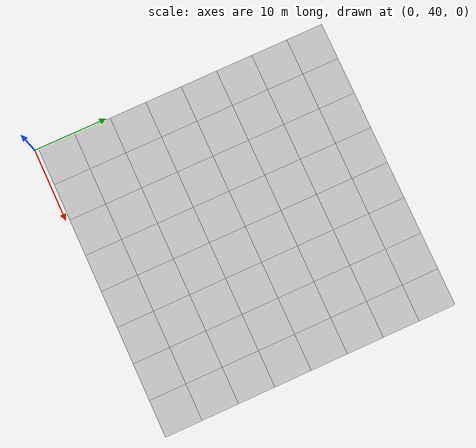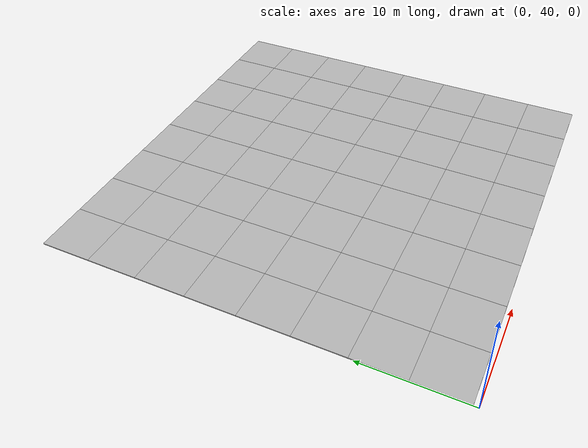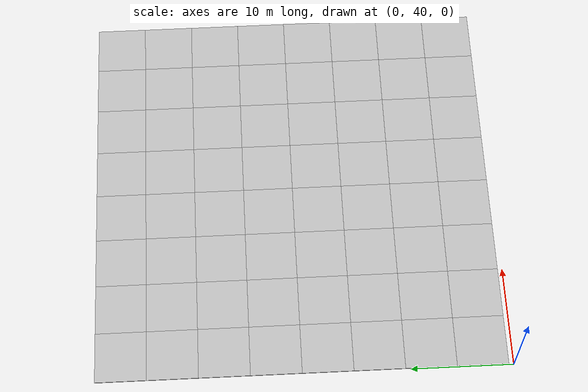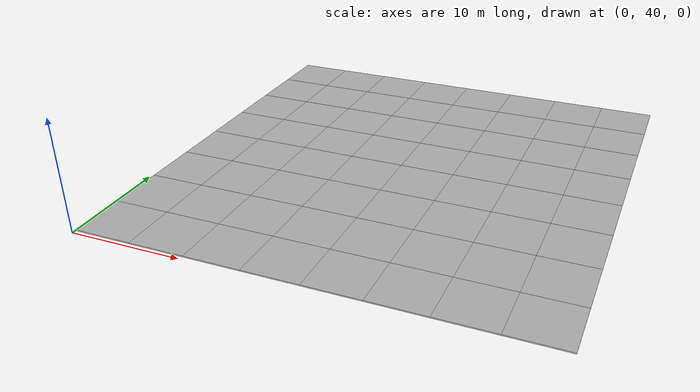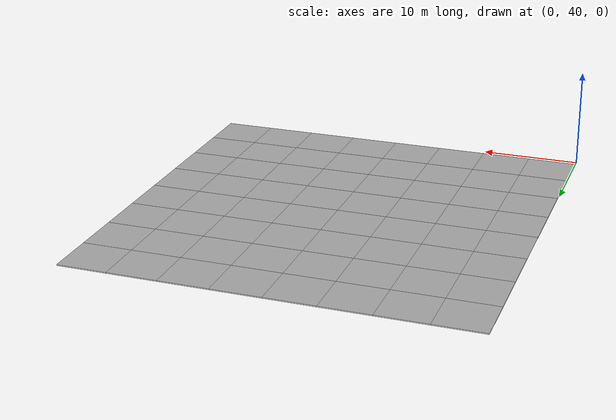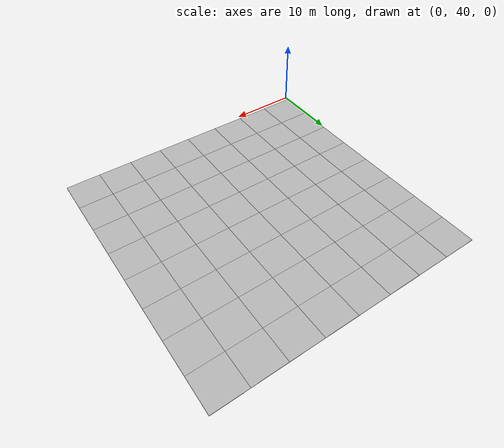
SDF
<sdf version="1.7">
 <world name="default">
  <model name="mud_plane_80x80">
   <model name="mud_plane_40x40_1">
    <model name="mud_plane_20x20">
     <model name="mud_plane">
      <static>1</static>
      <link name="link">
       <collision name="collision"><geometry><box><size>10 10 0.1</size></box></geometry></collision>
       <visual name="visual_1">
        <pose>-2.5 2.5 -0.05 0 -0 0</pose>
        <cast_shadows>0</cast_shadows>
        <geometry><box><size>5 5 0.1</size></box></geometry>
        <material>
         <script>
          <uri>model://mud_plane/materials/scripts</uri>
          <uri>model://mud_plane/materials/textures</uri>
          <name>vrc/mud</name>
         </script>
        </material>
       </visual>
       <visual name="visual_2">
        <pose>2.5 2.5 -0.05 0 -0 0</pose>
        <cast_shadows>0</cast_shadows>
        <geometry><box><size>5 5 0.1</size></box></geometry>
        <material>
         <script>
          <uri>model://mud_plane/materials/scripts</uri>
          <uri>model://mud_plane/materials/textures</uri>
          <name>vrc/mud</name>
         </script>
        </material>
       </visual>
       <visual name="visual_3">
        <pose>2.5 -2.5 -0.05 0 -0 0</pose>
        <cast_shadows>0</cast_shadows>
        <geometry><box><size>5 5 0.1</size></box></geometry>
        <material>
         <script>
          <uri>model://mud_plane/materials/scripts</uri>
          <uri>model://mud_plane/materials/textures</uri>
          <name>vrc/mud</name>
         </script>
        </material>
       </visual>
       <visual name="visual_4">
        <pose>-2.5 -2.5 -0.05 0 -0 0</pose>
        <cast_shadows>0</cast_shadows>
        <geometry><box><size>5 5 0.1</size></box></geometry>
        <material>
         <script>
          <uri>model://mud_plane/materials/scripts</uri>
          <uri>model://mud_plane/materials/textures</uri>
          <name>vrc/mud</name>
         </script>
        </material>
       </visual>
      </link>
      <pose>-4.99986 -4.99991 0 0 -0 0</pose>
     </model>
     <model name="mud_plane_0">
      <static>1</static>
      <link name="link">
       <collision name="collision"><geometry><box><size>10 10 0.1</size></box></geometry></collision>
       <visual name="visual_1">
        <pose>-2.5 2.5 -0.05 0 -0 0</pose>
        <cast_shadows>0</cast_shadows>
        <geometry><box><size>5 5 0.1</size></box></geometry>
        <material>
         <script>
          <uri>model://mud_plane/materials/scripts</uri>
          <uri>model://mud_plane/materials/textures</uri>
          <name>vrc/mud</name>
         </script>
        </material>
       </visual>
       <visual name="visual_2">
        <pose>2.5 2.5 -0.05 0 -0 0</pose>
        <cast_shadows>0</cast_shadows>
        <geometry><box><size>5 5 0.1</size></box></geometry>
        <material>
         <script>
          <uri>model://mud_plane/materials/scripts</uri>
          <uri>model://mud_plane/materials/textures</uri>
          <name>vrc/mud</name>
         </script>
        </material>
       </visual>
       <visual name="visual_3">
        <pose>2.5 -2.5 -0.05 0 -0 0</pose>
        <cast_shadows>0</cast_shadows>
        <geometry><box><size>5 5 0.1</size></box></geometry>
        <material>
         <script>
          <uri>model://mud_plane/materials/scripts</uri>
          <uri>model://mud_plane/materials/textures</uri>
          <name>vrc/mud</name>
         </script>
        </material>
       </visual>
       <visual name="visual_4">
        <pose>-2.5 -2.5 -0.05 0 -0 0</pose>
        <cast_shadows>0</cast_shadows>
        <geometry><box><size>5 5 0.1</size></box></geometry>
        <material>
         <script>
          <uri>model://mud_plane/materials/scripts</uri>
          <uri>model://mud_plane/materials/textures</uri>
          <name>vrc/mud</name>
         </script>
        </material>
       </visual>
      </link>
      <pose>-4.99946 4.99954 0 0 -0 0</pose>
     </model>
     <model name="mud_plane_1">
      <static>1</static>
      <link name="link">
       <collision name="collision"><geometry><box><size>10 10 0.1</size></box></geometry></collision>
       <visual name="visual_1">
        <pose>-2.5 2.5 -0.05 0 -0 0</pose>
        <cast_shadows>0</cast_shadows>
        <geometry><box><size>5 5 0.1</size></box></geometry>
        <material>
         <script>
          <uri>model://mud_plane/materials/scripts</uri>
          <uri>model://mud_plane/materials/textures</uri>
          <name>vrc/mud</name>
         </script>
        </material>
       </visual>
       <visual name="visual_2">
        <pose>2.5 2.5 -0.05 0 -0 0</pose>
        <cast_shadows>0</cast_shadows>
        <geometry><box><size>5 5 0.1</size></box></geometry>
        <material>
         <script>
          <uri>model://mud_plane/materials/scripts</uri>
          <uri>model://mud_plane/materials/textures</uri>
          <name>vrc/mud</name>
         </script>
        </material>
       </visual>
       <visual name="visual_3">
        <pose>2.5 -2.5 -0.05 0 -0 0</pose>
        <cast_shadows>0</cast_shadows>
        <geometry><box><size>5 5 0.1</size></box></geometry>
        <material>
         <script>
          <uri>model://mud_plane/materials/scripts</uri>
          <uri>model://mud_plane/materials/textures</uri>
          <name>vrc/mud</name>
         </script>
        </material>
       </visual>
       <visual name="visual_4">
        <pose>-2.5 -2.5 -0.05 0 -0 0</pose>
        <cast_shadows>0</cast_shadows>
        <geometry><box><size>5 5 0.1</size></box></geometry>
        <material>
         <script>
          <uri>model://mud_plane/materials/scripts</uri>
          <uri>model://mud_plane/materials/textures</uri>
          <name>vrc/mud</name>
         </script>
        </material>
       </visual>
      </link>
      <pose>4.99964 -4.99949 0 0 -0 0</pose>
     </model>
     <model name="mud_plane_2">
      <static>1</static>
      <link name="link">
       <collision name="collision"><geometry><box><size>10 10 0.1</size></box></geometry></collision>
       <visual name="visual_1">
        <pose>-2.5 2.5 -0.05 0 -0 0</pose>
        <cast_shadows>0</cast_shadows>
        <geometry><box><size>5 5 0.1</size></box></geometry>
        <material>
         <script>
          <uri>model://mud_plane/materials/scripts</uri>
          <uri>model://mud_plane/materials/textures</uri>
          <name>vrc/mud</name>
         </script>
        </material>
       </visual>
       <visual name="visual_2">
        <pose>2.5 2.5 -0.05 0 -0 0</pose>
        <cast_shadows>0</cast_shadows>
        <geometry><box><size>5 5 0.1</size></box></geometry>
        <material>
         <script>
          <uri>model://mud_plane/materials/scripts</uri>
          <uri>model://mud_plane/materials/textures</uri>
          <name>vrc/mud</name>
         </script>
        </material>
       </visual>
       <visual name="visual_3">
        <pose>2.5 -2.5 -0.05 0 -0 0</pose>
        <cast_shadows>0</cast_shadows>
        <geometry><box><size>5 5 0.1</size></box></geometry>
        <material>
         <script>
          <uri>model://mud_plane/materials/scripts</uri>
          <uri>model://mud_plane/materials/textures</uri>
          <name>vrc/mud</name>
         </script>
        </material>
       </visual>
       <visual name="visual_4">
        <pose>-2.5 -2.5 -0.05 0 -0 0</pose>
        <cast_shadows>0</cast_shadows>
        <geometry><box><size>5 5 0.1</size></box></geometry>
        <material>
         <script>
          <uri>model://mud_plane/materials/scripts</uri>
          <uri>model://mud_plane/materials/textures</uri>
          <name>vrc/mud</name>
         </script>
        </material>
       </visual>
      </link>
      <pose>4.99967 4.99986 0 0 -0 0</pose>
     </model>
     <static>0</static>
     <pose>-9.99895 9.99843 0 0 -0 0</pose>
    </model>
    <model name="mud_plane_20x20_0">
     <model name="mud_plane">
      <static>1</static>
      <link name="link">
       <collision name="collision"><geometry><box><size>10 10 0.1</size></box></geometry></collision>
       <visual name="visual_1">
        <pose>-2.5 2.5 -0.05 0 -0 0</pose>
        <cast_shadows>0</cast_shadows>
        <geometry><box><size>5 5 0.1</size></box></geometry>
        <material>
         <script>
          <uri>model://mud_plane/materials/scripts</uri>
          <uri>model://mud_plane/materials/textures</uri>
          <name>vrc/mud</name>
         </script>
        </material>
       </visual>
       <visual name="visual_2">
        <pose>2.5 2.5 -0.05 0 -0 0</pose>
        <cast_shadows>0</cast_shadows>
        <geometry><box><size>5 5 0.1</size></box></geometry>
        <material>
         <script>
          <uri>model://mud_plane/materials/scripts</uri>
          <uri>model://mud_plane/materials/textures</uri>
          <name>vrc/mud</name>
         </script>
        </material>
       </visual>
       <visual name="visual_3">
        <pose>2.5 -2.5 -0.05 0 -0 0</pose>
        <cast_shadows>0</cast_shadows>
        <geometry><box><size>5 5 0.1</size></box></geometry>
        <material>
         <script>
          <uri>model://mud_plane/materials/scripts</uri>
          <uri>model://mud_plane/materials/textures</uri>
          <name>vrc/mud</name>
         </script>
        </material>
       </visual>
       <visual name="visual_4">
        <pose>-2.5 -2.5 -0.05 0 -0 0</pose>
        <cast_shadows>0</cast_shadows>
        <geometry><box><size>5 5 0.1</size></box></geometry>
        <material>
         <script>
          <uri>model://mud_plane/materials/scripts</uri>
          <uri>model://mud_plane/materials/textures</uri>
          <name>vrc/mud</name>
         </script>
        </material>
       </visual>
      </link>
      <pose>-4.99986 -4.99991 0 0 -0 0</pose>
     </model>
     <model name="mud_plane_0">
      <static>1</static>
      <link name="link">
       <collision name="collision"><geometry><box><size>10 10 0.1</size></box></geometry></collision>
       <visual name="visual_1">
        <pose>-2.5 2.5 -0.05 0 -0 0</pose>
        <cast_shadows>0</cast_shadows>
        <geometry><box><size>5 5 0.1</size></box></geometry>
        <material>
         <script>
          <uri>model://mud_plane/materials/scripts</uri>
          <uri>model://mud_plane/materials/textures</uri>
          <name>vrc/mud</name>
         </script>
        </material>
       </visual>
       <visual name="visual_2">
        <pose>2.5 2.5 -0.05 0 -0 0</pose>
        <cast_shadows>0</cast_shadows>
        <geometry><box><size>5 5 0.1</size></box></geometry>
        <material>
         <script>
          <uri>model://mud_plane/materials/scripts</uri>
          <uri>model://mud_plane/materials/textures</uri>
          <name>vrc/mud</name>
         </script>
        </material>
       </visual>
       <visual name="visual_3">
        <pose>2.5 -2.5 -0.05 0 -0 0</pose>
        <cast_shadows>0</cast_shadows>
        <geometry><box><size>5 5 0.1</size></box></geometry>
        <material>
         <script>
          <uri>model://mud_plane/materials/scripts</uri>
          <uri>model://mud_plane/materials/textures</uri>
          <name>vrc/mud</name>
         </script>
        </material>
       </visual>
       <visual name="visual_4">
        <pose>-2.5 -2.5 -0.05 0 -0 0</pose>
        <cast_shadows>0</cast_shadows>
        <geometry><box><size>5 5 0.1</size></box></geometry>
        <material>
         <script>
          <uri>model://mud_plane/materials/scripts</uri>
          <uri>model://mud_plane/materials/textures</uri>
          <name>vrc/mud</name>
         </script>
        </material>
       </visual>
      </link>
      <pose>-4.99946 4.99954 0 0 -0 0</pose>
     </model>
     <model name="mud_plane_1">
      <static>1</static>
      <link name="link">
       <collision name="collision"><geometry><box><size>10 10 0.1</size></box></geometry></collision>
       <visual name="visual_1">
        <pose>-2.5 2.5 -0.05 0 -0 0</pose>
        <cast_shadows>0</cast_shadows>
        <geometry><box><size>5 5 0.1</size></box></geometry>
        <material>
         <script>
          <uri>model://mud_plane/materials/scripts</uri>
          <uri>model://mud_plane/materials/textures</uri>
          <name>vrc/mud</name>
         </script>
        </material>
       </visual>
       <visual name="visual_2">
        <pose>2.5 2.5 -0.05 0 -0 0</pose>
        <cast_shadows>0</cast_shadows>
        <geometry><box><size>5 5 0.1</size></box></geometry>
        <material>
         <script>
          <uri>model://mud_plane/materials/scripts</uri>
          <uri>model://mud_plane/materials/textures</uri>
          <name>vrc/mud</name>
         </script>
        </material>
       </visual>
       <visual name="visual_3">
        <pose>2.5 -2.5 -0.05 0 -0 0</pose>
        <cast_shadows>0</cast_shadows>
        <geometry><box><size>5 5 0.1</size></box></geometry>
        <material>
         <script>
          <uri>model://mud_plane/materials/scripts</uri>
          <uri>model://mud_plane/materials/textures</uri>
          <name>vrc/mud</name>
         </script>
        </material>
       </visual>
       <visual name="visual_4">
        <pose>-2.5 -2.5 -0.05 0 -0 0</pose>
        <cast_shadows>0</cast_shadows>
        <geometry><box><size>5 5 0.1</size></box></geometry>
        <material>
         <script>
          <uri>model://mud_plane/materials/scripts</uri>
          <uri>model://mud_plane/materials/textures</uri>
          <name>vrc/mud</name>
         </script>
        </material>
       </visual>
      </link>
      <pose>4.99964 -4.99949 0 0 -0 0</pose>
     </model>
     <model name="mud_plane_2">
      <static>1</static>
      <link name="link">
       <collision name="collision"><geometry><box><size>10 10 0.1</size></box></geometry></collision>
       <visual name="visual_1">
        <pose>-2.5 2.5 -0.05 0 -0 0</pose>
        <cast_shadows>0</cast_shadows>
        <geometry><box><size>5 5 0.1</size></box></geometry>
        <material>
         <script>
          <uri>model://mud_plane/materials/scripts</uri>
          <uri>model://mud_plane/materials/textures</uri>
          <name>vrc/mud</name>
         </script>
        </material>
       </visual>
       <visual name="visual_2">
        <pose>2.5 2.5 -0.05 0 -0 0</pose>
        <cast_shadows>0</cast_shadows>
        <geometry><box><size>5 5 0.1</size></box></geometry>
        <material>
         <script>
          <uri>model://mud_plane/materials/scripts</uri>
          <uri>model://mud_plane/materials/textures</uri>
          <name>vrc/mud</name>
         </script>
        </material>
       </visual>
       <visual name="visual_3">
        <pose>2.5 -2.5 -0.05 0 -0 0</pose>
        <cast_shadows>0</cast_shadows>
        <geometry><box><size>5 5 0.1</size></box></geometry>
        <material>
         <script>
          <uri>model://mud_plane/materials/scripts</uri>
          <uri>model://mud_plane/materials/textures</uri>
          <name>vrc/mud</name>
         </script>
        </material>
       </visual>
       <visual name="visual_4">
        <pose>-2.5 -2.5 -0.05 0 -0 0</pose>
        <cast_shadows>0</cast_shadows>
        <geometry><box><size>5 5 0.1</size></box></geometry>
        <material>
         <script>
          <uri>model://mud_plane/materials/scripts</uri>
          <uri>model://mud_plane/materials/textures</uri>
          <name>vrc/mud</name>
         </script>
        </material>
       </visual>
      </link>
      <pose>4.99967 4.99986 0 0 -0 0</pose>
     </model>
     <static>0</static>
     <pose>9.99933 9.9997 0 0 -0 0</pose>
    </model>
    <model name="mud_plane_20x20_1">
     <model name="mud_plane">
      <static>1</static>
      <link name="link">
       <collision name="collision"><geometry><box><size>10 10 0.1</size></box></geometry></collision>
       <visual name="visual_1">
        <pose>-2.5 2.5 -0.05 0 -0 0</pose>
        <cast_shadows>0</cast_shadows>
        <geometry><box><size>5 5 0.1</size></box></geometry>
        <material>
         <script>
          <uri>model://mud_plane/materials/scripts</uri>
          <uri>model://mud_plane/materials/textures</uri>
          <name>vrc/mud</name>
         </script>
        </material>
       </visual>
       <visual name="visual_2">
        <pose>2.5 2.5 -0.05 0 -0 0</pose>
        <cast_shadows>0</cast_shadows>
        <geometry><box><size>5 5 0.1</size></box></geometry>
        <material>
         <script>
          <uri>model://mud_plane/materials/scripts</uri>
          <uri>model://mud_plane/materials/textures</uri>
          <name>vrc/mud</name>
         </script>
        </material>
       </visual>
       <visual name="visual_3">
        <pose>2.5 -2.5 -0.05 0 -0 0</pose>
        <cast_shadows>0</cast_shadows>
        <geometry><box><size>5 5 0.1</size></box></geometry>
        <material>
         <script>
          <uri>model://mud_plane/materials/scripts</uri>
          <uri>model://mud_plane/materials/textures</uri>
          <name>vrc/mud</name>
         </script>
        </material>
       </visual>
       <visual name="visual_4">
        <pose>-2.5 -2.5 -0.05 0 -0 0</pose>
        <cast_shadows>0</cast_shadows>
        <geometry><box><size>5 5 0.1</size></box></geometry>
        <material>
         <script>
          <uri>model://mud_plane/materials/scripts</uri>
          <uri>model://mud_plane/materials/textures</uri>
          <name>vrc/mud</name>
         </script>
        </material>
       </visual>
      </link>
      <pose>-4.99986 -4.99991 0 0 -0 0</pose>
     </model>
     <model name="mud_plane_0">
      <static>1</static>
      <link name="link">
       <collision name="collision"><geometry><box><size>10 10 0.1</size></box></geometry></collision>
       <visual name="visual_1">
        <pose>-2.5 2.5 -0.05 0 -0 0</pose>
        <cast_shadows>0</cast_shadows>
        <geometry><box><size>5 5 0.1</size></box></geometry>
        <material>
         <script>
          <uri>model://mud_plane/materials/scripts</uri>
          <uri>model://mud_plane/materials/textures</uri>
          <name>vrc/mud</name>
         </script>
        </material>
       </visual>
       <visual name="visual_2">
        <pose>2.5 2.5 -0.05 0 -0 0</pose>
        <cast_shadows>0</cast_shadows>
        <geometry><box><size>5 5 0.1</size></box></geometry>
        <material>
         <script>
          <uri>model://mud_plane/materials/scripts</uri>
          <uri>model://mud_plane/materials/textures</uri>
          <name>vrc/mud</name>
         </script>
        </material>
       </visual>
       <visual name="visual_3">
        <pose>2.5 -2.5 -0.05 0 -0 0</pose>
        <cast_shadows>0</cast_shadows>
        <geometry><box><size>5 5 0.1</size></box></geometry>
        <material>
         <script>
          <uri>model://mud_plane/materials/scripts</uri>
          <uri>model://mud_plane/materials/textures</uri>
          <name>vrc/mud</name>
         </script>
        </material>
       </visual>
       <visual name="visual_4">
        <pose>-2.5 -2.5 -0.05 0 -0 0</pose>
        <cast_shadows>0</cast_shadows>
        <geometry><box><size>5 5 0.1</size></box></geometry>
        <material>
         <script>
          <uri>model://mud_plane/materials/scripts</uri>
          <uri>model://mud_plane/materials/textures</uri>
          <name>vrc/mud</name>
         </script>
        </material>
       </visual>
      </link>
      <pose>-4.99946 4.99954 0 0 -0 0</pose>
     </model>
     <model name="mud_plane_1">
      <static>1</static>
      <link name="link">
       <collision name="collision"><geometry><box><size>10 10 0.1</size></box></geometry></collision>
       <visual name="visual_1">
        <pose>-2.5 2.5 -0.05 0 -0 0</pose>
        <cast_shadows>0</cast_shadows>
        <geometry><box><size>5 5 0.1</size></box></geometry>
        <material>
         <script>
          <uri>model://mud_plane/materials/scripts</uri>
          <uri>model://mud_plane/materials/textures</uri>
          <name>vrc/mud</name>
         </script>
        </material>
       </visual>
       <visual name="visual_2">
        <pose>2.5 2.5 -0.05 0 -0 0</pose>
        <cast_shadows>0</cast_shadows>
        <geometry><box><size>5 5 0.1</size></box></geometry>
        <material>
         <script>
          <uri>model://mud_plane/materials/scripts</uri>
          <uri>model://mud_plane/materials/textures</uri>
          <name>vrc/mud</name>
         </script>
        </material>
       </visual>
       <visual name="visual_3">
        <pose>2.5 -2.5 -0.05 0 -0 0</pose>
        <cast_shadows>0</cast_shadows>
        <geometry><box><size>5 5 0.1</size></box></geometry>
        <material>
         <script>
          <uri>model://mud_plane/materials/scripts</uri>
          <uri>model://mud_plane/materials/textures</uri>
          <name>vrc/mud</name>
         </script>
        </material>
       </visual>
       <visual name="visual_4">
        <pose>-2.5 -2.5 -0.05 0 -0 0</pose>
        <cast_shadows>0</cast_shadows>
        <geometry><box><size>5 5 0.1</size></box></geometry>
        <material>
         <script>
          <uri>model://mud_plane/materials/scripts</uri>
          <uri>model://mud_plane/materials/textures</uri>
          <name>vrc/mud</name>
         </script>
        </material>
       </visual>
      </link>
      <pose>4.99964 -4.99949 0 0 -0 0</pose>
     </model>
     <model name="mud_plane_2">
      <static>1</static>
      <link name="link">
       <collision name="collision"><geometry><box><size>10 10 0.1</size></box></geometry></collision>
       <visual name="visual_1">
        <pose>-2.5 2.5 -0.05 0 -0 0</pose>
        <cast_shadows>0</cast_shadows>
        <geometry><box><size>5 5 0.1</size></box></geometry>
        <material>
         <script>
          <uri>model://mud_plane/materials/scripts</uri>
          <uri>model://mud_plane/materials/textures</uri>
          <name>vrc/mud</name>
         </script>
        </material>
       </visual>
       <visual name="visual_2">
        <pose>2.5 2.5 -0.05 0 -0 0</pose>
        <cast_shadows>0</cast_shadows>
        <geometry><box><size>5 5 0.1</size></box></geometry>
        <material>
         <script>
          <uri>model://mud_plane/materials/scripts</uri>
          <uri>model://mud_plane/materials/textures</uri>
          <name>vrc/mud</name>
         </script>
        </material>
       </visual>
       <visual name="visual_3">
        <pose>2.5 -2.5 -0.05 0 -0 0</pose>
        <cast_shadows>0</cast_shadows>
        <geometry><box><size>5 5 0.1</size></box></geometry>
        <material>
         <script>
          <uri>model://mud_plane/materials/scripts</uri>
          <uri>model://mud_plane/materials/textures</uri>
          <name>vrc/mud</name>
         </script>
        </material>
       </visual>
       <visual name="visual_4">
        <pose>-2.5 -2.5 -0.05 0 -0 0</pose>
        <cast_shadows>0</cast_shadows>
        <geometry><box><size>5 5 0.1</size></box></geometry>
        <material>
         <script>
          <uri>model://mud_plane/materials/scripts</uri>
          <uri>model://mud_plane/materials/textures</uri>
          <name>vrc/mud</name>
         </script>
        </material>
       </visual>
      </link>
      <pose>4.99967 4.99986 0 0 -0 0</pose>
     </model>
     <static>0</static>
     <pose>9.9993 -9.99877 0 0 -0 0</pose>
    </model>
    <model name="mud_plane_20x20_2">
     <model name="mud_plane">
      <static>1</static>
      <link name="link">
       <collision name="collision"><geometry><box><size>10 10 0.1</size></box></geometry></collision>
       <visual name="visual_1">
        <pose>-2.5 2.5 -0.05 0 -0 0</pose>
        <cast_shadows>0</cast_shadows>
        <geometry><box><size>5 5 0.1</size></box></geometry>
        <material>
         <script>
          <uri>model://mud_plane/materials/scripts</uri>
          <uri>model://mud_plane/materials/textures</uri>
          <name>vrc/mud</name>
         </script>
        </material>
       </visual>
       <visual name="visual_2">
        <pose>2.5 2.5 -0.05 0 -0 0</pose>
        <cast_shadows>0</cast_shadows>
        <geometry><box><size>5 5 0.1</size></box></geometry>
        <material>
         <script>
          <uri>model://mud_plane/materials/scripts</uri>
          <uri>model://mud_plane/materials/textures</uri>
          <name>vrc/mud</name>
         </script>
        </material>
       </visual>
       <visual name="visual_3">
        <pose>2.5 -2.5 -0.05 0 -0 0</pose>
        <cast_shadows>0</cast_shadows>
        <geometry><box><size>5 5 0.1</size></box></geometry>
        <material>
         <script>
          <uri>model://mud_plane/materials/scripts</uri>
          <uri>model://mud_plane/materials/textures</uri>
          <name>vrc/mud</name>
         </script>
        </material>
       </visual>
       <visual name="visual_4">
        <pose>-2.5 -2.5 -0.05 0 -0 0</pose>
        <cast_shadows>0</cast_shadows>
        <geometry><box><size>5 5 0.1</size></box></geometry>
        <material>
         <script>
          <uri>model://mud_plane/materials/scripts</uri>
          <uri>model://mud_plane/materials/textures</uri>
          <name>vrc/mud</name>
         </script>
        </material>
       </visual>
      </link>
      <pose>-4.99986 -4.99991 0 0 -0 0</pose>
     </model>
     <model name="mud_plane_0">
      <static>1</static>
      <link name="link">
       <collision name="collision"><geometry><box><size>10 10 0.1</size></box></geometry></collision>
       <visual name="visual_1">
        <pose>-2.5 2.5 -0.05 0 -0 0</pose>
        <cast_shadows>0</cast_shadows>
        <geometry><box><size>5 5 0.1</size></box></geometry>
        <material>
         <script>
          <uri>model://mud_plane/materials/scripts</uri>
          <uri>model://mud_plane/materials/textures</uri>
          <name>vrc/mud</name>
         </script>
        </material>
       </visual>
       <visual name="visual_2">
        <pose>2.5 2.5 -0.05 0 -0 0</pose>
        <cast_shadows>0</cast_shadows>
        <geometry><box><size>5 5 0.1</size></box></geometry>
        <material>
         <script>
          <uri>model://mud_plane/materials/scripts</uri>
          <uri>model://mud_plane/materials/textures</uri>
          <name>vrc/mud</name>
         </script>
        </material>
       </visual>
       <visual name="visual_3">
        <pose>2.5 -2.5 -0.05 0 -0 0</pose>
        <cast_shadows>0</cast_shadows>
        <geometry><box><size>5 5 0.1</size></box></geometry>
        <material>
         <script>
          <uri>model://mud_plane/materials/scripts</uri>
          <uri>model://mud_plane/materials/textures</uri>
          <name>vrc/mud</name>
         </script>
        </material>
       </visual>
       <visual name="visual_4">
        <pose>-2.5 -2.5 -0.05 0 -0 0</pose>
        <cast_shadows>0</cast_shadows>
        <geometry><box><size>5 5 0.1</size></box></geometry>
        <material>
         <script>
          <uri>model://mud_plane/materials/scripts</uri>
          <uri>model://mud_plane/materials/textures</uri>
          <name>vrc/mud</name>
         </script>
        </material>
       </visual>
      </link>
      <pose>-4.99946 4.99954 0 0 -0 0</pose>
     </model>
     <model name="mud_plane_1">
      <static>1</static>
      <link name="link">
       <collision name="collision"><geometry><box><size>10 10 0.1</size></box></geometry></collision>
       <visual name="visual_1">
        <pose>-2.5 2.5 -0.05 0 -0 0</pose>
        <cast_shadows>0</cast_shadows>
        <geometry><box><size>5 5 0.1</size></box></geometry>
        <material>
         <script>
          <uri>model://mud_plane/materials/scripts</uri>
          <uri>model://mud_plane/materials/textures</uri>
          <name>vrc/mud</name>
         </script>
        </material>
       </visual>
       <visual name="visual_2">
        <pose>2.5 2.5 -0.05 0 -0 0</pose>
        <cast_shadows>0</cast_shadows>
        <geometry><box><size>5 5 0.1</size></box></geometry>
        <material>
         <script>
          <uri>model://mud_plane/materials/scripts</uri>
          <uri>model://mud_plane/materials/textures</uri>
          <name>vrc/mud</name>
         </script>
        </material>
       </visual>
       <visual name="visual_3">
        <pose>2.5 -2.5 -0.05 0 -0 0</pose>
        <cast_shadows>0</cast_shadows>
        <geometry><box><size>5 5 0.1</size></box></geometry>
        <material>
         <script>
          <uri>model://mud_plane/materials/scripts</uri>
          <uri>model://mud_plane/materials/textures</uri>
          <name>vrc/mud</name>
         </script>
        </material>
       </visual>
       <visual name="visual_4">
        <pose>-2.5 -2.5 -0.05 0 -0 0</pose>
        <cast_shadows>0</cast_shadows>
        <geometry><box><size>5 5 0.1</size></box></geometry>
        <material>
         <script>
          <uri>model://mud_plane/materials/scripts</uri>
          <uri>model://mud_plane/materials/textures</uri>
          <name>vrc/mud</name>
         </script>
        </material>
       </visual>
      </link>
      <pose>4.99964 -4.99949 0 0 -0 0</pose>
     </model>
     <model name="mud_plane_2">
      <static>1</static>
      <link name="link">
       <collision name="collision"><geometry><box><size>10 10 0.1</size></box></geometry></collision>
       <visual name="visual_1">
        <pose>-2.5 2.5 -0.05 0 -0 0</pose>
        <cast_shadows>0</cast_shadows>
        <geometry><box><size>5 5 0.1</size></box></geometry>
        <material>
         <script>
          <uri>model://mud_plane/materials/scripts</uri>
          <uri>model://mud_plane/materials/textures</uri>
          <name>vrc/mud</name>
         </script>
        </material>
       </visual>
       <visual name="visual_2">
        <pose>2.5 2.5 -0.05 0 -0 0</pose>
        <cast_shadows>0</cast_shadows>
        <geometry><box><size>5 5 0.1</size></box></geometry>
        <material>
         <script>
          <uri>model://mud_plane/materials/scripts</uri>
          <uri>model://mud_plane/materials/textures</uri>
          <name>vrc/mud</name>
         </script>
        </material>
       </visual>
       <visual name="visual_3">
        <pose>2.5 -2.5 -0.05 0 -0 0</pose>
        <cast_shadows>0</cast_shadows>
        <geometry><box><size>5 5 0.1</size></box></geometry>
        <material>
         <script>
          <uri>model://mud_plane/materials/scripts</uri>
          <uri>model://mud_plane/materials/textures</uri>
          <name>vrc/mud</name>
         </script>
        </material>
       </visual>
       <visual name="visual_4">
        <pose>-2.5 -2.5 -0.05 0 -0 0</pose>
        <cast_shadows>0</cast_shadows>
        <geometry><box><size>5 5 0.1</size></box></geometry>
        <material>
         <script>
          <uri>model://mud_plane/materials/scripts</uri>
          <uri>model://mud_plane/materials/textures</uri>
          <name>vrc/mud</name>
         </script>
        </material>
       </visual>
      </link>
      <pose>4.99967 4.99986 0 0 -0 0</pose>
     </model>
     <static>0</static>
     <pose>-9.99969 -9.99935 0 0 -0 0</pose>
    </model>
    <static>0</static>
    <pose>-19.9982 19.9977 0 0 -0 0</pose>
   </model>
   <static>0</static>
   <pose>40.1011 40.4629 0 0 -0 0</pose>
  </model>
 </world>
</sdf>
